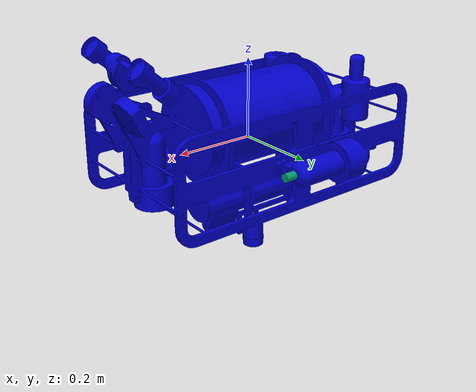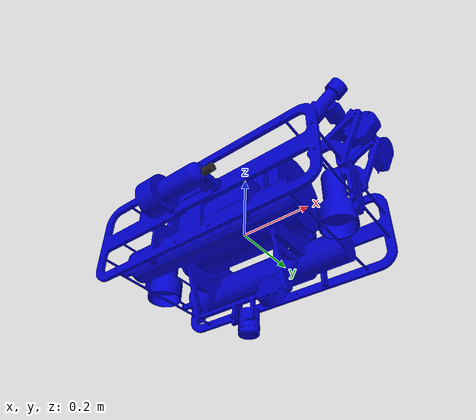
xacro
<?xml version="1.0"?>
<robot xmlns:xacro="http://www.ros.org/wiki/xacro"
 	xmlns:sensor="http://playerstage.sourceforge.net/gazebo/xmlschema/#sensor"
    	xmlns:controller="http://playerstage.sourceforge.net/gazebo/xmlschema/#controller"
    	xmlns:interface="http://playerstage.sourceforge.net/gazebo/xmlschema/#interface"
	name="charle_xacro">

    <xacro:include filename="$(find charle_description)/urdf/charle.gazebo" />

	<xacro:property name="length_thruster" value="0.2" />
	<xacro:property name="radius_thruster" value="0.01" />
	<xacro:macro name="default_inertial" params="mass">
               <inertial>
                       <mass value="${mass}" />
                       <inertia ixx="1" ixy="0.0" ixz="0.0"
                                iyy="1" iyz="0.0"
                                izz="1" />
               </inertial>
	</xacro:macro>

	<link name="base_footprint">
   		<visual>
			<geometry>
      				<box size="0.001 0.001 0.001"/>
     			</geometry>
			<origin rpy="0 0 0" xyz="0 0 0"/>
   		</visual>
			<collision>
				<geometry>
	       				<box size="0.2 .3 0.1"/>
				</geometry>
			</collision>
 	</link>

	<gazebo reference="base_footprint">
		<material>Gazebo/Green</material>
		<turnGravityOff>false</turnGravityOff>
	</gazebo>

	<joint name="base_footprint_joint" type="fixed">
		<origin xyz="0 0 0" />
		<parent link="base_footprint" />
		<child link="base_link" />
	</joint>

  <link name="base_link">
    <visual>
	<origin rpy="1.57 0 0" xyz="0 0 0" />
      <geometry>
        <mesh filename="package://charle_description/urdf/AVORA_body_stl.STL" scale="0.001 0.001 0.001"/>
      </geometry>
      <material name="blue">
     	<color rgba="0 0 .8 1"/>
      </material>
    </visual>
	 <collision>
			<geometry>
       				<box size="0.2 .3 0.1"/>
			</geometry>
	 </collision>
	 <xacro:default_inertial mass="0.1"/>
  </link>

 	<joint name="base_to_thruster_1" type="continuous">
   	<parent link="base_link"/>
   	<child link="thruster_1"/>
   	<origin rpy="0 1.5707 0" xyz="0.0 0.25 0"/>
   	<axis xyz="0 0 1" />
 	</joint>

 	<link name="thruster_1">
   		<visual>
     			<geometry>
       				<cylinder length="${length_thruster}" radius="${radius_thruster}"/>
     			</geometry>
			<origin rpy="0 0 0" xyz="0 0 0"/>
		</visual>
		<collision>
			<geometry>
       				<cylinder length="${length_thruster}" radius="${radius_thruster}"/>
			</geometry>
		</collision>
		<xacro:default_inertial mass="0.1"/>
 	</link>

 <joint name="base_to_thruster_2" type="continuous">
   <parent link="base_link"/>
   <child link="thruster_2"/>
   <origin rpy="0 1.5707 0" xyz="0.0 -0.25 0"/>
   <axis xyz="0 0 1" />
 </joint>

  <link name="thruster_2">
      <visual>
          <geometry>
              <cylinder length="${length_thruster}" radius="${radius_thruster}"/>
          </geometry>
      <origin rpy="0 0 0" xyz="0 0 0"/>
    </visual>
    <collision>
      <geometry>
              <cylinder length="${length_thruster}" radius="${radius_thruster}"/>
      </geometry>
    </collision>
    <xacro:default_inertial mass="0.1"/>
  </link>

  <joint name="sonar_to_base_link" type="revolute">
    <parent link="base_link"/>
    <child link="sonar"/>
    <origin rpy="1.5707 0 0" xyz="-0.0 -0 -0.205"/>
    <axis xyz="1 0 0" />
    <limit effort ="10000.0" lower="-1.57" upper="1.57" velocity="0.5"/>
  </joint>

  <link name="sonar">
    <visual>
	<origin rpy="0 0 0" xyz="0 0.0 -0.0" />
      <geometry>
        <mesh filename="package://charle_description/urdf/AVORA_sonar_stl.STL" scale="0.001 0.001 0.001"/>
      </geometry>
      <material name="blue">
     	<color rgba="0 0 .8 1"/>
      </material>
    </visual>
	 <collision>
			<geometry>
       				<cylinder length="0.01" radius="0.03"/>
			</geometry>
 	 </collision>
               <inertial>
                       <mass value="1" />
                       <inertia ixx="0" ixy="0.0" ixz="0.0"
                                iyy="0" iyz="0.0"
                                izz="0" />
               </inertial>
  </link>

  <joint name="sonarDato_to_sonar" type="continuous">
    <parent link="sonar"/>
    <child link="sonarDato"/>
    <origin rpy="1.57 0 0" xyz="-0.0 -0.075 -0.02"/>
    <axis xyz="0 0 1" />
    <limit effort ="1000.0" velocity="1000000"/>

  </joint>

 <link name="sonarDato">
    <visual>
	   <origin rpy="0 0 0" xyz="-0.0 -0.0 0.0"/>
      <geometry>
        <cylinder length="0.01" radius="0.01"/>
      </geometry>
      <material name="blue">
     	<color rgba="0 0 .8 1"/>
      </material>
    </visual>
             <collision>
      <geometry>
              <cylinder length="0.01" radius="0.01"/>
      </geometry>
   </collision>
       <xacro:default_inertial mass="0.00001"/>
  </link>

  <transmission name="tran1">
    <type>transmission_interface/SimpleTransmission</type>
    <joint name="sonar_to_base_link">
      <hardwareInterface>EffortJointInterface</hardwareInterface>
    </joint>
    <actuator name="sonar_servo">
       <hardwareInterface>EffortJointInterface</hardwareInterface>
      <mechanicalReduction>1</mechanicalReduction>
    </actuator>
  </transmission>

  <joint name="laserDato_to_sonar" type="fixed">
    <parent link="sonar"/>
    <child link="laserDato"/>
    <origin rpy="1.57 0 0" xyz="-0.0 -0.075 -0.02"/>
  </joint>

  <link name="laserDato">
    <visual>
  <origin rpy="0 0 0" xyz="-0.0 -0.0 0.0"/>
      <geometry>
        <cylinder length="0.02" radius="0.02"/>
      </geometry>
      <material name="blue">
      <color rgba="0 0 .8 1"/>
      </material>
    </visual>
  </link>

  <joint name="servo_head_to_base_link" type="revolute">
    <parent link="base_link"/>
    <child link="servo_head"/>
    <origin rpy="0 0.7 3.1414" xyz="0.38 0 0.16"/>
    <axis xyz="0 1 0" />
    <limit effort ="1000.0" lower="-1.5" upper="0.5" velocity="0.5"/>
  </joint>

  <link name="servo_head">
    <visual>
	<origin rpy="1.57 0 0" xyz="0 0 0" />
      <geometry>
        <mesh filename="package://charle_description/urdf/AVORA_servo_head_stl.STL" scale="0.001 0.001 0.001"/>
      </geometry>
      <material name="blue">
     	<color rgba="0 0 .8 1"/>
      </material>
    </visual>
  </link>

  <joint name="head_to_servo_head" type="revolute">
    <parent link="servo_head"/>
    <child link="head_link"/>
    <origin rpy="0 0 3.14" xyz="0 0 0.04"/>
    <axis xyz="0 0 1" />
    <limit effort ="1000.0" lower="0.8" upper="2.4" velocity="0.5"/>
  </joint>

  <link name="head_link">
    <visual>
	    <origin rpy="1.54 0 -1.54" xyz="0 0 0" />
      <geometry>
        <mesh filename="package://charle_description/urdf/AVORA_head_stl.STL" scale="0.001 0.001 0.001"/>
      </geometry>
      <material name="blue">
     	<color rgba="0 0 .8 1"/>
      </material>
    </visual>
  </link>

</robot>
